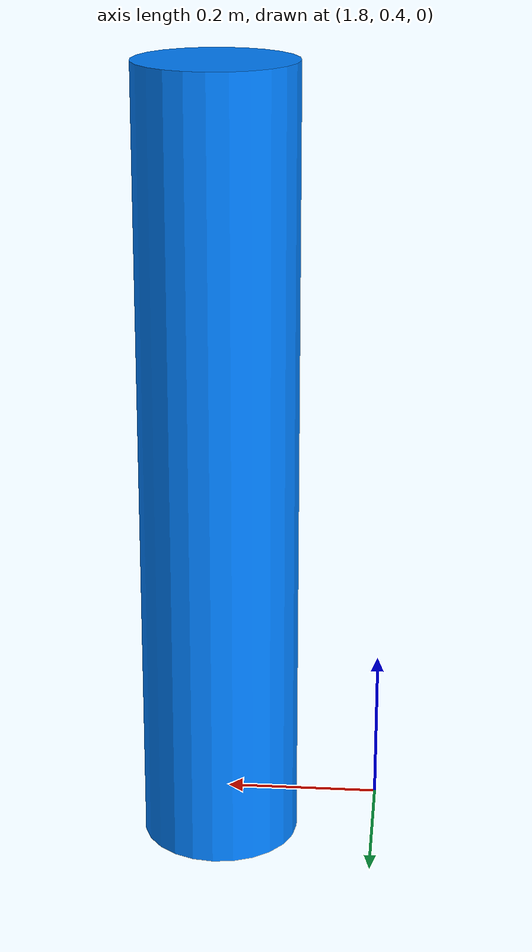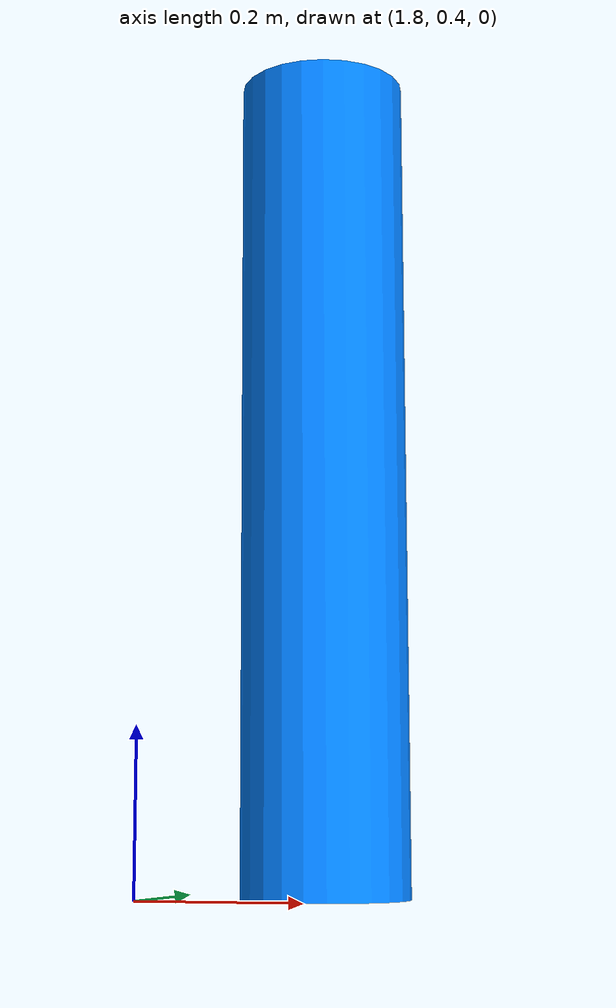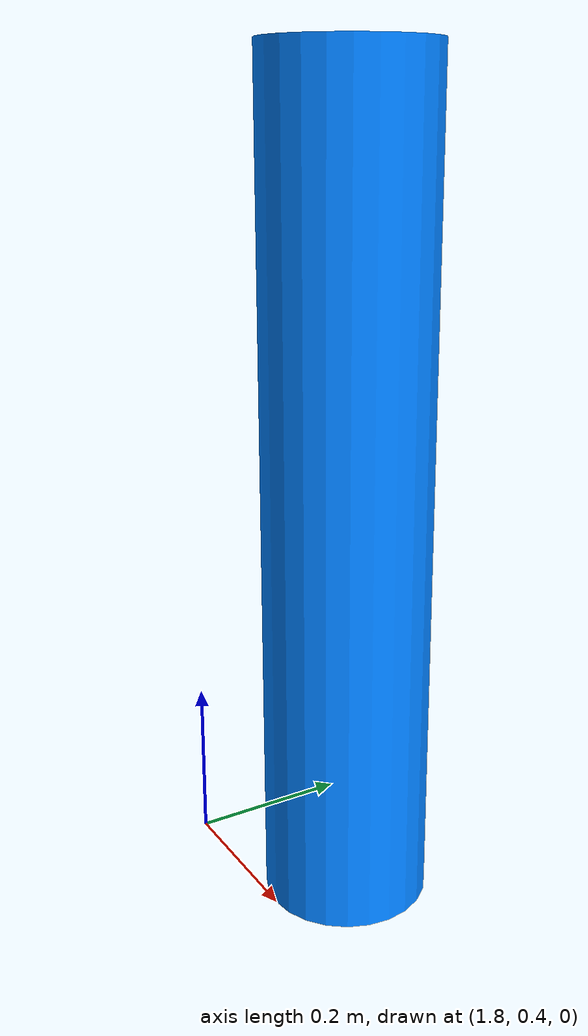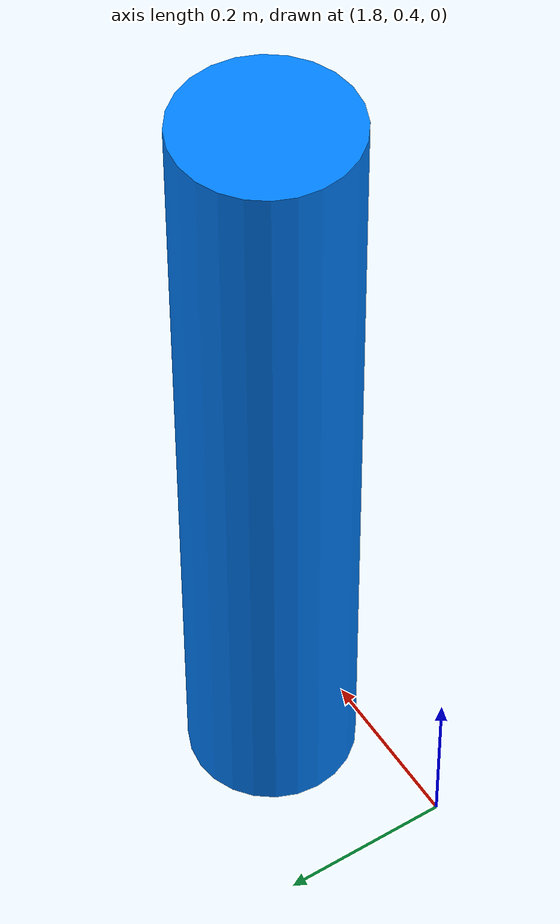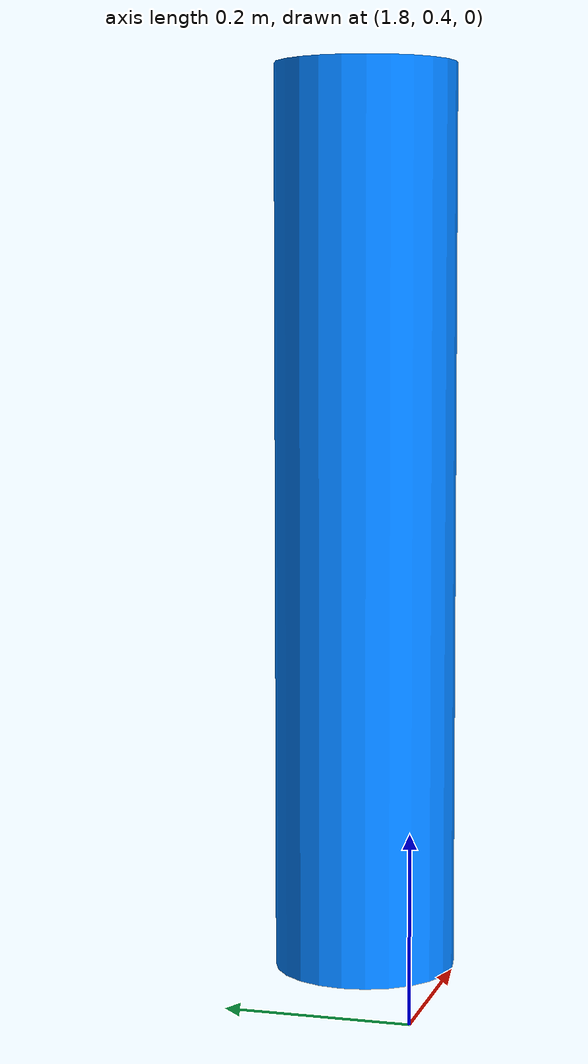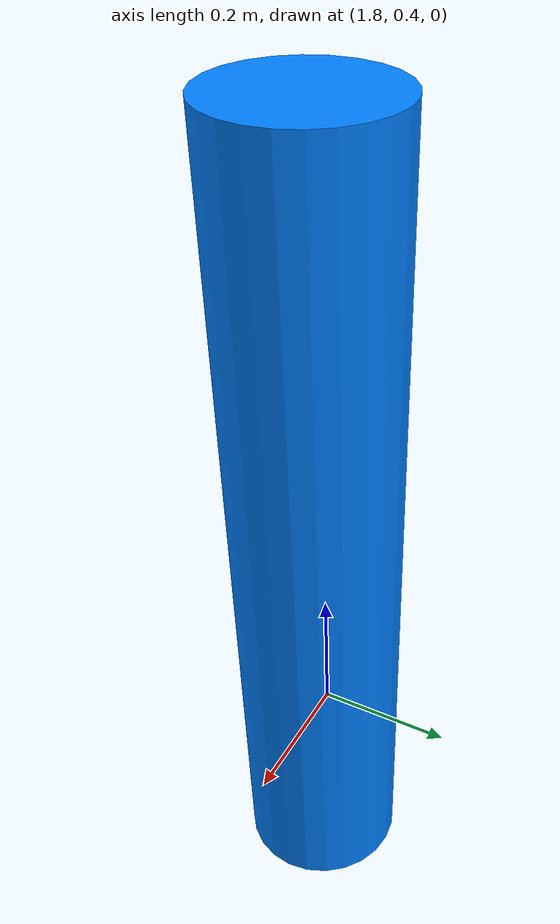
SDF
<?xml version="1.0" ?>
<sdf version="1.6">
  <model name="moving_cylinder">
    <link name="link">
      <visual name="visual">
        <geometry>
          <cylinder>
            <radius>0.1</radius>
            <length>1.0</length>
          </cylinder>
        </geometry>
        <material>
          <ambient>0.0 0.5 1.0 1.0</ambient>
        </material>
      </visual>
      <collision name="collision">
        <geometry>
          <cylinder>
            <radius>0.1</radius>
            <length>1.0</length>
          </cylinder>
        </geometry>
      </collision>
      <inertial>
        <mass>1.0</mass>
        <inertia>
          <ixx>0.002</ixx>
          <iyy>0.002</iyy>
          <izz>0.002</izz>
        </inertia>
      </inertial>
    </link>
    <pose>2 0.5 0.5 0 0 0</pose>
  </model>
</sdf>
